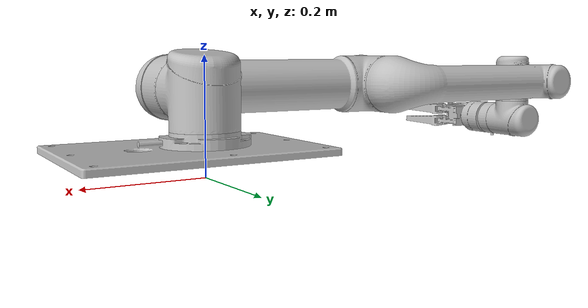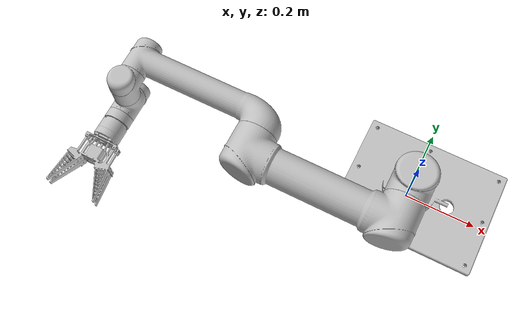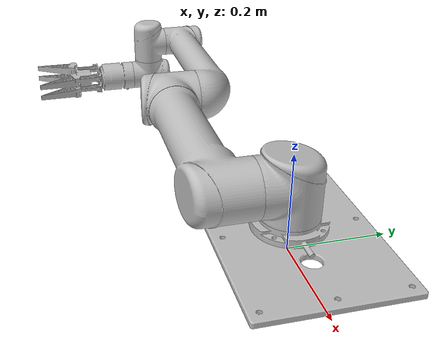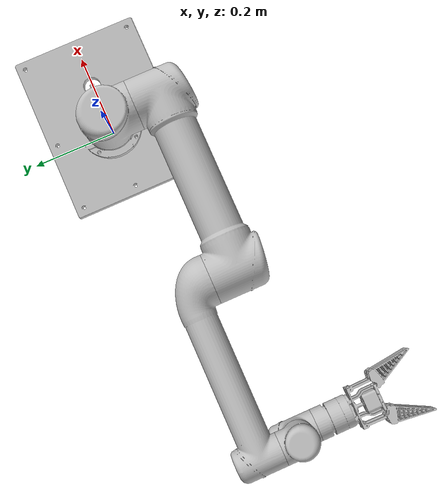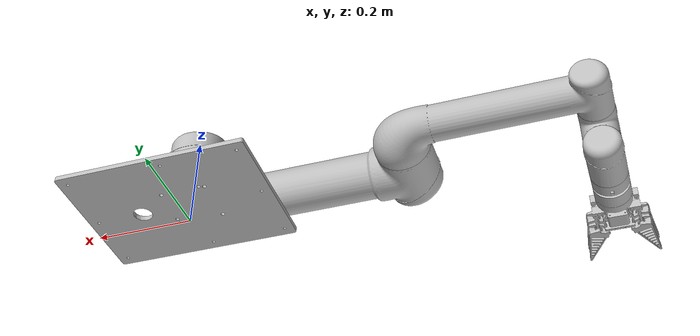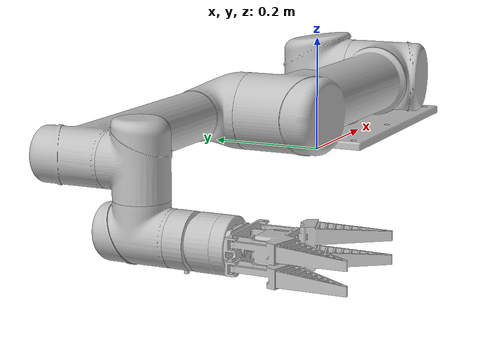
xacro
<?xml version="1.0" encoding="utf-8"?>
<robot
  name="ur5"
  xmlns:xacro="http://www.ros.org/wiki/xacro">

  <xacro:property name="M_PI" value="3.1415926536"/>

  <link name="base_footprint"/>
  <joint name="joint_0" type="fixed">
    <origin xyz="0 0 0.0532" rpy="0 0 0" />
    <parent link="base_footprint" />
    <child link="base_link" />
  </joint>

  <link
    name="base_link">
    <inertial>
      <origin
        xyz="0.0235759066632154 -4.024260750256E-07 -0.00267484602059103"
        rpy="0 0 0" />
      <mass
        value="1.7590663588329" />
      <inertia
        ixx="0.0111044047546135"
        ixy="-2.43496975298582E-06"
        ixz="3.4899177892921E-07"
        iyy="0.019324958776445"
        iyz="5.4412544869659E-08"
        izz="0.0303647859152603" />
    </inertial>
    <visual>
      <origin
        xyz="0 0 0"
        rpy="0 0 0" />
      <geometry>
        <mesh
          filename="package://ur5/meshes/base_link.STL" />
      </geometry>
      <material
        name="">
        <color
          rgba="0.752941176470588 0.752941176470588 0.752941176470588 1" />
      </material>
    </visual>
    <collision>
      <origin
        xyz="0 0 0"
        rpy="0 0 0" />
      <geometry>
        <mesh
          filename="package://ur5/meshes/base_link.STL" />
      </geometry>
    </collision>
  </link>

  <link
    name="Link1">
    <inertial>
      <origin
        xyz="-4.33139494392822E-06 -0.00186927605738119 0.00924020497630284"
        rpy="0 0 0" />
      <mass
        value="0.00001" />
      <inertia
        ixx="0.0028146857132453"
        ixy="-2.04222958000101E-08"
        ixz="-3.74832962999915E-08"
        iyy="0.00301831638792784"
        iyz="-0.000413432771678958"
        izz="0.00258081118256846" />
    </inertial>
    <visual>
      <origin
        xyz="0 0 0"
        rpy="0 0 0" />
      <geometry>
        <mesh
          filename="package://ur5/meshes/Link1.STL" />
      </geometry>
      <material
        name="">
        <color
          rgba="0.752941176470588 0.752941176470588 0.752941176470588 1" />
      </material>
    </visual>
    <collision>
      <origin
        xyz="0 0 0"
        rpy="0 0 0" />
      <geometry>
        <mesh
          filename="package://ur5/meshes/Link1.STL" />
      </geometry>
    </collision>
  </link>
  <joint
    name="Joint1"
    type="continuous">
    <origin
      xyz="0 0 0.0892"
      rpy="1.5708 0 0" />
    <parent
      link="base_link" />
    <child
      link="Link1" />
    <axis
      xyz="0 1 0" />
    <limit
      lower="-3.14"
      upper="3.14"
      effort="1000"
      velocity="1000" />
  </joint>

  <link
    name="Link2">
    <inertial>
      <origin
        xyz="-0.212499982180631 1.76727700529344E-09 0.134621416221834"
        rpy="0 0 0" />
      <mass
        value="0.00001" />
      <inertia
        ixx="0.00808994025531996"
        ixy="-7.71587058034231E-08"
        ixz="5.77898419873088E-10"
        iyy="0.0229057488132269"
        iyz="-3.96344123140802E-10"
        izz="0.0233130078218392" />
    </inertial>
    <visual>
      <origin
        xyz="0 0 0"
        rpy="0 0 0" />
      <geometry>
        <mesh
          filename="package://ur5/meshes/Link2.STL" />
      </geometry>
      <material
        name="">
        <color
          rgba="0.752941176470588 0.752941176470588 0.752941176470588 1" />
      </material>
    </visual>
    <collision>
      <origin
        xyz="0 0 0"
        rpy="0 0 0" />
      <geometry>
        <mesh
          filename="package://ur5/meshes/Link2.STL" />
      </geometry>
    </collision>
  </link>
  <joint
    name="Joint2"
    type="continuous">
    <origin
      xyz="0 0 0"
      rpy="0 0 0" />
    <parent
      link="Link1" />
    <child
      link="Link2" />
    <axis
      xyz="0 0 1" />
    <limit
      lower="-3.14"
      upper="3.14"
      effort="1000"
      velocity="1000" />
  </joint>

  <link
    name="Link3">
    <inertial>
      <origin
        xyz="-0.184404791090397 -5.75500430366471E-07 0.00441010722354379"
        rpy="0 0 0" />
      <mass
        value="0.00001" />
      <inertia
        ixx="0.00217649268314962"
        ixy="3.15920384836248E-08"
        ixz="-0.000151962208976148"
        iyy="0.00958565883046658"
        iyz="2.70874067564241E-08"
        izz="0.00967973060442219" />
    </inertial>
    <visual>
      <origin
        xyz="0 0 0"
        rpy="0 0 0" />
      <geometry>
        <mesh
          filename="package://ur5/meshes/Link3.STL" />
      </geometry>
      <material
        name="">
        <color
          rgba="0.752941176470588 0.752941176470588 0.752941176470588 1" />
      </material>
    </visual>
    <collision>
      <origin
        xyz="0 0 0"
        rpy="0 0 0" />
      <geometry>
        <mesh
          filename="package://ur5/meshes/Link3.STL" />
      </geometry>
    </collision>
  </link>
  <joint
    name="Joint3"
    type="continuous">
    <origin
      xyz="-0.425000000000001 0 0.0159999999999997"
      rpy="0 0 0" />
    <parent
      link="Link2" />
    <child
      link="Link3" />
    <axis
      xyz="0 0 -1" />
    <limit
      lower="-3.14"
      upper="3.14"
      effort="1000"
      velocity="1000" />
  </joint>

  <link
    name="Link4">
    <inertial>
      <origin
        xyz="1.47659840743497E-06 -0.0045599294197019 -0.00356635134023785"
        rpy="0 0 0" />
      <mass
        value="0.00001" />
      <inertia
        ixx="0.000402129033003172"
        ixy="1.5427603534118E-09"
        ixz="7.23887278008737E-09"
        iyy="0.000372758812319602"
        iyz="-5.68882815507802E-05"
        izz="0.000409988353950142" />
    </inertial>
    <visual>
      <origin
        xyz="0 0 0"
        rpy="0 0 0" />
      <geometry>
        <mesh
          filename="package://ur5/meshes/Link4.STL" />
      </geometry>
      <material
        name="">
        <color
          rgba="0.752941176470588 0.752941176470588 0.752941176470588 1" />
      </material>
    </visual>
    <collision>
      <origin
        xyz="0 0 0"
        rpy="0 0 0" />
      <geometry>
        <mesh
          filename="package://ur5/meshes/Link4.STL" />
      </geometry>
    </collision>
  </link>
  <joint
    name="Joint4"
    type="continuous">
    <origin
      xyz="-0.392429999999999 0 0.0929999999999997"
      rpy="1.5707963267949 0 0" />
    <parent
      link="Link3" />
    <child
      link="Link4" />
    <axis
      xyz="0 1 0" />
    <limit
      lower="-3.14"
      upper="3.14"
      effort="1000"
      velocity="1000" />
  </joint>

  <link
    name="Link5">
    <inertial>
      <origin
        xyz="-1.47659840832315E-06 0.00455992941970204 -0.00356635134023789"
        rpy="0 0 0" />
      <mass
        value="0.00001" />
      <inertia
        ixx="0.000402129080759367"
        ixy="1.54610002746828E-09"
        ixz="-7.23354782817657E-09"
        iyy="0.000372758849638208"
        iyz="5.68882591960725E-05"
        izz="0.000409988374505139" />
    </inertial>
    <visual>
      <origin
        xyz="0 0 0"
        rpy="0 0 0" />
      <geometry>
        <mesh
          filename="package://ur5/meshes/Link5.STL" />
      </geometry>
      <material
        name="">
        <color
          rgba="0.752941176470588 0.752941176470588 0.752941176470588 1" />
      </material>
    </visual>
    <collision>
      <origin
        xyz="0 0 0"
        rpy="0 0 0" />
      <geometry>
        <mesh
          filename="package://ur5/meshes/Link5.STL" />
      </geometry>
    </collision>
  </link>
  <joint
    name="Joint5"
    type="continuous">
    <origin
      xyz="0 0 0.0930000000000001"
      rpy="-1.5707963267949 0 0" />
    <parent
      link="Link4" />
    <child
      link="Link5" />
    <axis
      xyz="0 1 0" />
    <limit
      lower="-3.14"
      upper="3.14"
      effort="1000"
      velocity="1000" />
  </joint>

  <link
    name="Link6">
    <inertial>
      <origin
        xyz="2.60811271168837E-05 -4.07713123062102E-05 0.00134956082673351"
        rpy="0 0 0" />
      <mass
        value="0.00001" />
      <inertia
        ixx="0.000269803894778329"
        ixy="-7.00926865492166E-08"
        ixz="6.17721994428448E-07"
        iyy="0.000296833277877122"
        iyz="-4.20222681335834E-08"
        izz="0.000321580918794378" />
    </inertial>
    <visual>
      <origin
        xyz="0 0 0"
        rpy="0 0 0" />
      <geometry>
        <mesh
          filename="package://ur5/meshes/Link6.STL" />
      </geometry>
      <material
        name="">
        <color
          rgba="0.752941176470588 0.752941176470588 0.752941176470588 1" />
      </material>
    </visual>
    <collision>
      <origin
        xyz="0 0 0"
        rpy="0 0 0" />
      <geometry>
        <mesh
          filename="package://ur5/meshes/Link6.STL" />
      </geometry>
    </collision>
  </link>
  <joint
    name="Joint6"
    type="continuous">
    <origin
      xyz="0 0 0.1315"
      rpy="0 0 0" />
    <parent
      link="Link5" />
    <child
      link="Link6" />
    <axis
      xyz="0 0 1" />
    <limit
      lower="-3.14"
      upper="3.14"
      effort="1000"
      velocity="1000" />
  </joint>
 <!-- Transmissions for ROS Control -->

 <xacro:macro name="transmission_block" params="joint_name">
    <transmission name="tran1">
      <type>transmission_interface/SimpleTransmission</type>
      <joint name="${joint_name}">
      <hardwareInterface>hardware_interface/PositionJointInterface</hardwareInterface>
      </joint>
      <actuator name="motor1">
      <hardwareInterface>hardware_interface/PositionJointInterface</hardwareInterface>
      <mechanicalReduction>1</mechanicalReduction>
      </actuator>
    </transmission>
</xacro:macro>

<xacro:transmission_block joint_name="Joint1"/>
<xacro:transmission_block joint_name="Joint2"/>
<xacro:transmission_block joint_name="Joint3"/>
<xacro:transmission_block joint_name="Joint4"/>
<xacro:transmission_block joint_name="Joint5"/>
<xacro:transmission_block joint_name="Joint6"/>

<!-- ros_control plugin -->
<gazebo>
  <plugin name="gazebo_ros_control" filename="libgazebo_ros_control.so">
    <robotNamespace>/ur5</robotNamespace>
    <robotSimType>gazebo_ros_control/DefaultRobotHWSim</robotSimType>
    <legacyModeNS>true</legacyModeNS>
  </plugin>
</gazebo>

</robot>
